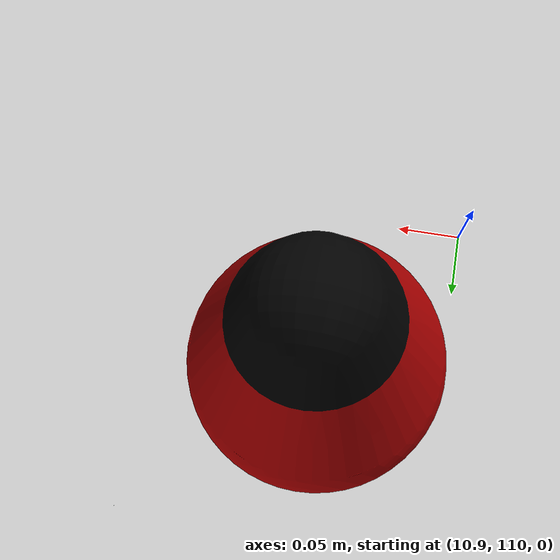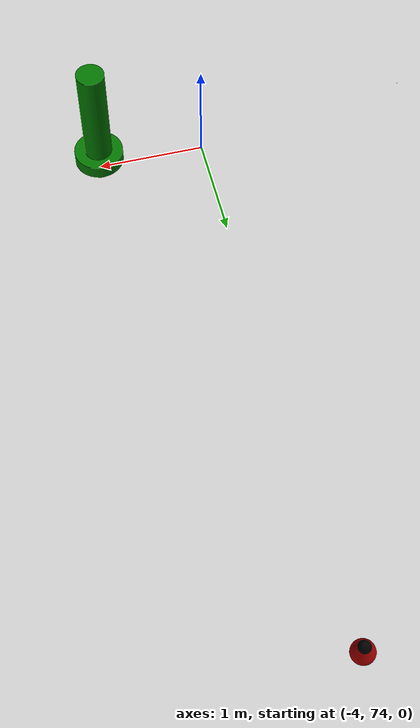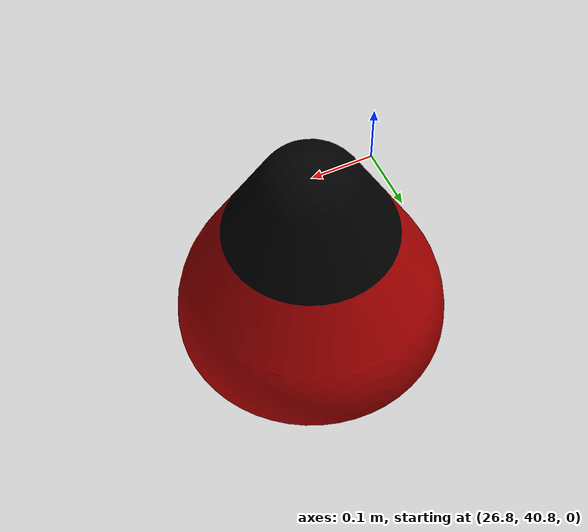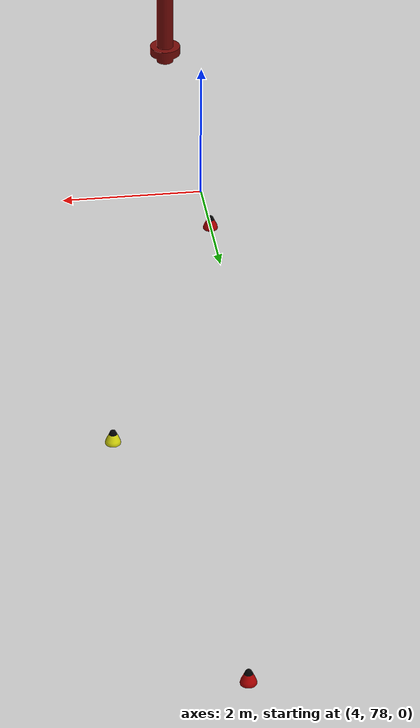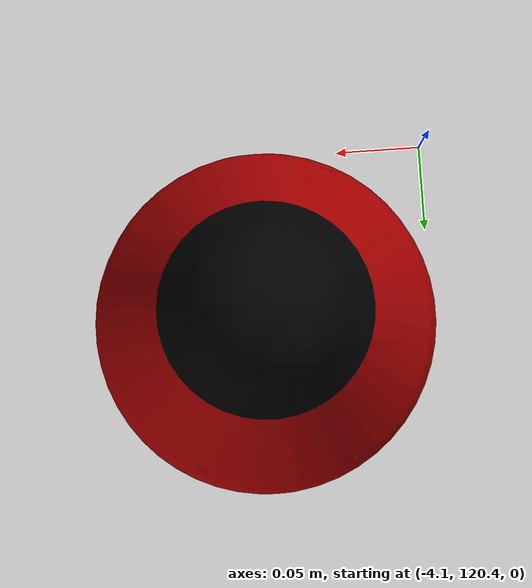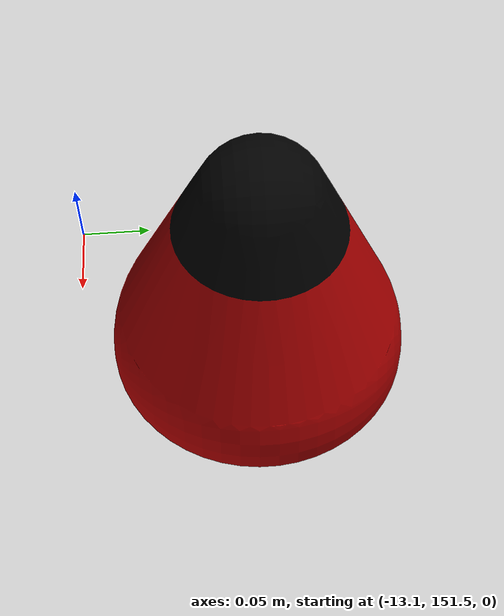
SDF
<sdf version='1.7'>
  <world name='default'>
    <light name='sun' type='directional'>
      <cast_shadows>1</cast_shadows>
      <pose>0 0 10 0 -0 0</pose>
      <diffuse>0.8 0.8 0.8 1</diffuse>
      <specular>0.2 0.2 0.2 1</specular>
      <attenuation>
        <range>1000</range>
        <constant>0.9</constant>
        <linear>0.01</linear>
        <quadratic>0.001</quadratic>
      </attenuation>
      <direction>-0.5 0.1 -0.9</direction>
      <spot>
        <inner_angle>0</inner_angle>
        <outer_angle>0</outer_angle>
        <falloff>0</falloff>
      </spot>
    </light>
    <model name='ground_plane'>
      <static>1</static>
      <link name='link'>
        <collision name='collision'>
          <geometry>
            <plane>
              <normal>0 0 1</normal>
              <size>100 100</size>
            </plane>
          </geometry>
          <surface>
            <contact>
              <collide_bitmask>65535</collide_bitmask>
              <ode/>
            </contact>
            <friction>
              <ode>
                <mu>100</mu>
                <mu2>50</mu2>
              </ode>
              <torsional>
                <ode/>
              </torsional>
            </friction>
            <bounce/>
          </surface>
          <max_contacts>10</max_contacts>
        </collision>
        <visual name='visual'>
          <cast_shadows>0</cast_shadows>
          <geometry>
            <plane>
              <normal>0 0 1</normal>
              <size>100 100</size>
            </plane>
          </geometry>
          <material>
            <script>
              <uri>file://media/materials/scripts/gazebo.material</uri>
              <name>Gazebo/Grey</name>
            </script>
          </material>
        </visual>
        <self_collide>0</self_collide>
        <enable_wind>0</enable_wind>
        <kinematic>0</kinematic>
      </link>
    </model>
    <gravity>0 0 -9.8</gravity>
    <magnetic_field>6e-06 2.3e-05 -4.2e-05</magnetic_field>
    <atmosphere type='adiabatic'/>
    <physics type='ode'>
      <max_step_size>0.001</max_step_size>
      <real_time_factor>1</real_time_factor>
      <real_time_update_rate>1000</real_time_update_rate>
    </physics>
    <scene>
      <ambient>0.4 0.4 0.4 1</ambient>
      <background>0.7 0.7 0.7 1</background>
    <shadows>1</shadows>
    </scene>
    <wind/>
    <spherical_coordinates>
      <surface_model>EARTH_WGS84</surface_model>
      <latitude_deg>0</latitude_deg>
      <longitude_deg>0</longitude_deg>
      <elevation>0</elevation>
      <heading_deg>0</heading_deg>
    </spherical_coordinates>
    <model name='NChannel_Green_1'>
      <link name='link'>
        <inertial>
          <pose>0 0 0 0 -0 0</pose>
          <mass>48.25765288</mass>
          <inertia>
            <ixx>19.0181270589003</ixx>
            <ixy>-0.1151698171335</ixy>
            <ixz>-4.3895955e-06</ixz>
            <iyy>0.877758148165</iyy>
            <iyz>-0.0006941413684</iyz>
            <izz>19.0188583655106</izz>
          </inertia>
        </inertial>
        <collision name='collision'>
          <pose>0.0 0.1016 0.0 0 0 0</pose>
          <geometry>
            <mesh>
              <uri>model://NChannel_Green/meshes/NChannel_Green.dae</uri>
            </mesh>
          </geometry>
          <surface>
            <friction>
              <ode>
                <mu>1</mu>
                <mu2>1</mu2>
              </ode>
              <torsional>
                <ode/>
              </torsional>
            </friction>
            <contact>
              <ode>
                <kp>1e+07</kp>
                <kd>1</kd>
                <min_depth>0.001</min_depth>
                <max_vel>0.1</max_vel>
              </ode>
            </contact>
            <bounce/>
          </surface>
          <max_contacts>10</max_contacts>
        </collision>
        <visual name='visual'>
          <pose>0.0 0.1016 0.0 0 0 0</pose>
          <geometry>
            <mesh>
              <uri>model://NChannel_Green/meshes/NChannel_Green.dae</uri>
              <scale>0.0254 0.0254 0.0254</scale>            </mesh>
          </geometry>
        </visual>
        <self_collide>0</self_collide>
        <enable_wind>0</enable_wind>
        <kinematic>0</kinematic>
      </link>
      <pose>-3 0 0 0 0 0</pose>
    </model>
    <model name='NChannel_Green_2'>
      <link name='link'>
        <inertial>
          <pose>0 0 0 0 -0 0</pose>
          <mass>21.88928528514496</mass>
          <inertia>
            <ixx>0.005565458997078466</ixx>
            <ixy>-3.37032607350023e-05</ixy>
            <ixz>-1.2845699102413499e-09</ixz>
            <iyy>0.00025686688115156113</iyy>
            <iyz>-2.0313332180616546e-07</iyz>
            <izz>0.005565673006425512</izz>
          </inertia>
        </inertial>
        <collision name='collision'>
          <pose>0.0 0.00258064 0.0 0 0 0</pose>
          <geometry>
            <mesh>
              <uri>model://NChannel_Green/meshes/NChannel_Green.dae</uri>
            </mesh>
          </geometry>
          <surface>
            <friction>
              <ode>
                <mu>1</mu>
                <mu2>1</mu2>
              </ode>
              <torsional>
                <ode/>
              </torsional>
            </friction>
            <contact>
              <ode>
                <kp>1e+07</kp>
                <kd>1</kd>
                <min_depth>0.001</min_depth>
                <max_vel>0.1</max_vel>
              </ode>
            </contact>
            <bounce/>
          </surface>
          <max_contacts>10</max_contacts>
        </collision>
        <visual name='visual'>
          <pose>0.0 0.00258064 0.0 0 0 0</pose>
          <geometry>
            <mesh>
              <uri>model://NChannel_Green/meshes/NChannel_Green.dae</uri>
              <scale>0.0254 0.0254 0.0254</scale>            </mesh>
          </geometry>
        </visual>
        <self_collide>0</self_collide>
        <enable_wind>0</enable_wind>
        <kinematic>0</kinematic>
      </link>
      <pose>-3 74 0 0 0 0</pose>
    </model>
    <model name='NChannel_Red_1'>
      <link name='link'>
        <inertial>
          <pose>0 0 0 0 -0 0</pose>
          <mass>9.928804691059472</mass>
          <inertia>
            <ixx>1.6286742512673433e-06</ixx>
            <ixy>-9.862912110512852e-09</ixy>
            <ixz>-3.7591615316205554e-13</ixz>
            <iyy>7.51694470401285e-08</iyy>
            <iyz>-5.944487435335972e-11</iyz>
            <izz>1.62873687889846e-06</izz>
          </inertia>
        </inertial>
        <collision name='collision'>
          <pose>0.0 6.5548256e-05 0.0 0 0 0</pose>
          <geometry>
            <mesh>
              <uri>model://NChannel_Red/meshes/NChannel_Red.dae</uri>
            </mesh>
          </geometry>
          <surface>
            <friction>
              <ode>
                <mu>1</mu>
                <mu2>1</mu2>
              </ode>
              <torsional>
                <ode/>
              </torsional>
            </friction>
            <contact>
              <ode>
                <kp>1e+07</kp>
                <kd>1</kd>
                <min_depth>0.001</min_depth>
                <max_vel>0.1</max_vel>
              </ode>
            </contact>
            <bounce/>
          </surface>
          <max_contacts>10</max_contacts>
        </collision>
        <visual name='visual'>
          <pose>0.0 6.5548256e-05 0.0 0 0 0</pose>
          <geometry>
            <mesh>
              <uri>model://NChannel_Red/meshes/NChannel_Red.dae</uri>
              <scale>0.0254 0.0254 0.0254</scale>            </mesh>
          </geometry>
        </visual>
        <self_collide>0</self_collide>
        <enable_wind>0</enable_wind>
        <kinematic>0</kinematic>
      </link>
      <pose>4 0 0 0 0 0</pose>
    </model>
    <model name='NChannel_Red_2'>
      <link name='link'>
        <inertial>
          <pose>0 0 0 0 -0 0</pose>
          <mass>4.503626377427048</mass>
          <inertia>
            <ixx>4.766147442886e-10</ixx>
            <ixy>-2.8862796411468478e-12</ixy>
            <ixz>-1.1000799028649798e-16</ixz>
            <iyy>2.1997564430989092e-11</iyy>
            <iyz>-1.7395930197304883e-14</iyz>
            <izz>4.766330716197816e-10</izz>
          </inertia>
        </inertial>
        <collision name='collision'>
          <pose>0.0 1.6649257023999999e-06 0.0 0 0 0</pose>
          <geometry>
            <mesh>
              <uri>model://NChannel_Red/meshes/NChannel_Red.dae</uri>
            </mesh>
          </geometry>
          <surface>
            <friction>
              <ode>
                <mu>1</mu>
                <mu2>1</mu2>
              </ode>
              <torsional>
                <ode/>
              </torsional>
            </friction>
            <contact>
              <ode>
                <kp>1e+07</kp>
                <kd>1</kd>
                <min_depth>0.001</min_depth>
                <max_vel>0.1</max_vel>
              </ode>
            </contact>
            <bounce/>
          </surface>
          <max_contacts>10</max_contacts>
        </collision>
        <visual name='visual'>
          <pose>0.0 1.6649257023999999e-06 0.0 0 0 0</pose>
          <geometry>
            <mesh>
              <uri>model://NChannel_Red/meshes/NChannel_Red.dae</uri>
              <scale>0.0254 0.0254 0.0254</scale>            </mesh>
          </geometry>
        </visual>
        <self_collide>0</self_collide>
        <enable_wind>0</enable_wind>
        <kinematic>0</kinematic>
      </link>
      <pose>4 74 0 0 0 0</pose>
    </model>
    <model name='A-0-Green_1'>
      <link name='link'>
        <inertial>
          <pose>0 0 0 0 -0 0</pose>
          <mass>1.892839416</mass>
          <inertia>
            <ixx>0.011653498133400001</ixx>
            <ixy>0.0</ixy>
            <ixz>0.0</ixz>
            <iyy>0.0072006924582</iyy>
            <iyz>0.0</iyz>
            <izz>0.011653498133400001</izz>
          </inertia>
        </inertial>
        <collision name='collision'>
          <pose>0.0 0.1016 0.0 0 0 0</pose>
          <geometry>
            <mesh>
              <uri>model://A-0-Green/meshes/A-0-Green.dae</uri>
            </mesh>
          </geometry>
          <surface>
            <friction>
              <ode>
                <mu>1</mu>
                <mu2>1</mu2>
              </ode>
              <torsional>
                <ode/>
              </torsional>
            </friction>
            <contact>
              <ode>
                <kp>1e+07</kp>
                <kd>1</kd>
                <min_depth>0.001</min_depth>
                <max_vel>0.1</max_vel>
              </ode>
            </contact>
            <bounce/>
          </surface>
          <max_contacts>10</max_contacts>
        </collision>
        <visual name='visual'>
          <pose>0.0 0.1016 0.0 0 0 0</pose>
          <geometry>
            <mesh>
              <uri>model://A-0-Green/meshes/A-0-Green.dae</uri>
              <scale>0.0254 0.0254 0.0254</scale>            </mesh>
          </geometry>
        </visual>
        <self_collide>0</self_collide>
        <enable_wind>0</enable_wind>
        <kinematic>0</kinematic>
      </link>
      <pose>-4 79 0 0 0 0</pose>
    </model>
    <model name='A-0-Red_1'>
      <link name='link'>
        <inertial>
          <pose>0 0 0 0 -0 0</pose>
          <mass>0.858576816382272</mass>
          <inertia>
            <ixx>3.4102761977087363e-06</ixx>
            <ixy>0.0</ixy>
            <ixz>0.0</ixz>
            <iyy>2.1072084807599107e-06</iyy>
            <iyz>0.0</iyz>
            <izz>3.4102761977087363e-06</izz>
          </inertia>
        </inertial>
        <collision name='collision'>
          <pose>0.0 0.00258064 0.0 0 0 0</pose>
          <geometry>
            <mesh>
              <uri>model://A-0-Red/meshes/A-0-Red.dae</uri>
            </mesh>
          </geometry>
          <surface>
            <friction>
              <ode>
                <mu>1</mu>
                <mu2>1</mu2>
              </ode>
              <torsional>
                <ode/>
              </torsional>
            </friction>
            <contact>
              <ode>
                <kp>1e+07</kp>
                <kd>1</kd>
                <min_depth>0.001</min_depth>
                <max_vel>0.1</max_vel>
              </ode>
            </contact>
            <bounce/>
          </surface>
          <max_contacts>10</max_contacts>
        </collision>
        <visual name='visual'>
          <pose>0.0 0.00258064 0.0 0 0 0</pose>
          <geometry>
            <mesh>
              <uri>model://A-0-Red/meshes/A-0-Red.dae</uri>
              <scale>0.0254 0.0254 0.0254</scale>            </mesh>
          </geometry>
        </visual>
        <self_collide>0</self_collide>
        <enable_wind>0</enable_wind>
        <kinematic>0</kinematic>
      </link>
      <pose>4 79 0 0 0 0</pose>
    </model>
    <model name='A-0-Green_2'>
      <link name='link'>
        <inertial>
          <pose>0 0 0 0 -0 0</pose>
          <mass>0.3894435752964675</mass>
          <inertia>
            <ixx>9.979822034146253e-10</ixx>
            <ixy>0.0</ixy>
            <ixz>0.0</ixz>
            <iyy>6.16652857647036e-10</iyy>
            <iyz>0.0</iyz>
            <izz>9.979822034146253e-10</izz>
          </inertia>
        </inertial>
        <collision name='collision'>
          <pose>0.0 6.5548256e-05 0.0 0 0 0</pose>
          <geometry>
            <mesh>
              <uri>model://A-0-Green/meshes/A-0-Green.dae</uri>
            </mesh>
          </geometry>
          <surface>
            <friction>
              <ode>
                <mu>1</mu>
                <mu2>1</mu2>
              </ode>
              <torsional>
                <ode/>
              </torsional>
            </friction>
            <contact>
              <ode>
                <kp>1e+07</kp>
                <kd>1</kd>
                <min_depth>0.001</min_depth>
                <max_vel>0.1</max_vel>
              </ode>
            </contact>
            <bounce/>
          </surface>
          <max_contacts>10</max_contacts>
        </collision>
        <visual name='visual'>
          <pose>0.0 6.5548256e-05 0.0 0 0 0</pose>
          <geometry>
            <mesh>
              <uri>model://A-0-Green/meshes/A-0-Green.dae</uri>
              <scale>0.0254 0.0254 0.0254</scale>            </mesh>
          </geometry>
        </visual>
        <self_collide>0</self_collide>
        <enable_wind>0</enable_wind>
        <kinematic>0</kinematic>
      </link>
      <pose>5 89.375 0 0 0 0</pose>
    </model>
    <model name='A-0-Red_2'>
      <link name='link'>
        <inertial>
          <pose>0 0 0 0 -0 0</pose>
          <mass>0.17664849020587528</mass>
          <inertia>
            <ixx>2.920492126125949e-13</ixx>
            <ixy>0.0</ixy>
            <ixz>0.0</ixz>
            <iyy>1.8045710726597133e-13</iyy>
            <iyz>0.0</iyz>
            <izz>2.920492126125949e-13</izz>
          </inertia>
        </inertial>
        <collision name='collision'>
          <pose>0.0 1.6649257023999999e-06 0.0 0 0 0</pose>
          <geometry>
            <mesh>
              <uri>model://A-0-Red/meshes/A-0-Red.dae</uri>
            </mesh>
          </geometry>
          <surface>
            <friction>
              <ode>
                <mu>1</mu>
                <mu2>1</mu2>
              </ode>
              <torsional>
                <ode/>
              </torsional>
            </friction>
            <contact>
              <ode>
                <kp>1e+07</kp>
                <kd>1</kd>
                <min_depth>0.001</min_depth>
                <max_vel>0.1</max_vel>
              </ode>
            </contact>
            <bounce/>
          </surface>
          <max_contacts>10</max_contacts>
        </collision>
        <visual name='visual'>
          <pose>0.0 1.6649257023999999e-06 0.0 0 0 0</pose>
          <geometry>
            <mesh>
              <uri>model://A-0-Red/meshes/A-0-Red.dae</uri>
              <scale>0.0254 0.0254 0.0254</scale>            </mesh>
          </geometry>
        </visual>
        <self_collide>0</self_collide>
        <enable_wind>0</enable_wind>
        <kinematic>0</kinematic>
      </link>
      <pose>13 89.375 0 0 0 0</pose>
    </model>
    <model name='A-0-Green_3'>
      <link name='link'>
        <inertial>
          <pose>0 0 0 0 -0 0</pose>
          <mass>0.08012634196946337</mass>
          <inertia>
            <ixx>8.546519396418599e-17</ixx>
            <ixy>0.0</ixy>
            <ixz>0.0</ixz>
            <iyy>5.280891373318167e-17</iyy>
            <iyz>0.0</iyz>
            <izz>8.546519396418599e-17</izz>
          </inertia>
        </inertial>
        <collision name='collision'>
          <pose>0.0 4.228911284096e-08 0.0 0 0 0</pose>
          <geometry>
            <mesh>
              <uri>model://A-0-Green/meshes/A-0-Green.dae</uri>
            </mesh>
          </geometry>
          <surface>
            <friction>
              <ode>
                <mu>1</mu>
                <mu2>1</mu2>
              </ode>
              <torsional>
                <ode/>
              </torsional>
            </friction>
            <contact>
              <ode>
                <kp>1e+07</kp>
                <kd>1</kd>
                <min_depth>0.001</min_depth>
                <max_vel>0.1</max_vel>
              </ode>
            </contact>
            <bounce/>
          </surface>
          <max_contacts>10</max_contacts>
        </collision>
        <visual name='visual'>
          <pose>0.0 4.228911284096e-08 0.0 0 0 0</pose>
          <geometry>
            <mesh>
              <uri>model://A-0-Green/meshes/A-0-Green.dae</uri>
              <scale>0.0254 0.0254 0.0254</scale>            </mesh>
          </geometry>
        </visual>
        <self_collide>0</self_collide>
        <enable_wind>0</enable_wind>
        <kinematic>0</kinematic>
      </link>
      <pose>7 99.75 0 0 0 0</pose>
    </model>
    <model name='A-0-Red_3'>
      <link name='link'>
        <inertial>
          <pose>0 0 0 0 -0 0</pose>
          <mass>0.03634466770661283</mass>
          <inertia>
            <ixx>2.50105087221212e-20</ixx>
            <ixy>0.0</ixy>
            <ixz>0.0</ixz>
            <iyy>1.5453984672204165e-20</iyy>
            <iyz>0.0</iyz>
            <izz>2.50105087221212e-20</izz>
          </inertia>
        </inertial>
        <collision name='collision'>
          <pose>0.0 1.0741434661603839e-09 0.0 0 0 0</pose>
          <geometry>
            <mesh>
              <uri>model://A-0-Red/meshes/A-0-Red.dae</uri>
            </mesh>
          </geometry>
          <surface>
            <friction>
              <ode>
                <mu>1</mu>
                <mu2>1</mu2>
              </ode>
              <torsional>
                <ode/>
              </torsional>
            </friction>
            <contact>
              <ode>
                <kp>1e+07</kp>
                <kd>1</kd>
                <min_depth>0.001</min_depth>
                <max_vel>0.1</max_vel>
              </ode>
            </contact>
            <bounce/>
          </surface>
          <max_contacts>10</max_contacts>
        </collision>
        <visual name='visual'>
          <pose>0.0 1.0741434661603839e-09 0.0 0 0 0</pose>
          <geometry>
            <mesh>
              <uri>model://A-0-Red/meshes/A-0-Red.dae</uri>
              <scale>0.0254 0.0254 0.0254</scale>            </mesh>
          </geometry>
        </visual>
        <self_collide>0</self_collide>
        <enable_wind>0</enable_wind>
        <kinematic>0</kinematic>
      </link>
      <pose>15 99.75 0 0 0 0</pose>
    </model>
    <model name='A-0-Green_4'>
      <link name='link'>
        <inertial>
          <pose>0 0 0 0 -0 0</pose>
          <mass>0.016485650514377927</mass>
          <inertia>
            <ixx>7.31906776928893e-24</ixx>
            <ixy>0.0</ixy>
            <ixz>0.0</ixz>
            <iyy>4.522449438278425e-24</iyy>
            <iyz>0.0</iyz>
            <izz>7.31906776928893e-24</izz>
          </inertia>
        </inertial>
        <collision name='collision'>
          <pose>0.0 2.7283244040473747e-11 0.0 0 0 0</pose>
          <geometry>
            <mesh>
              <uri>model://A-0-Green/meshes/A-0-Green.dae</uri>
            </mesh>
          </geometry>
          <surface>
            <friction>
              <ode>
                <mu>1</mu>
                <mu2>1</mu2>
              </ode>
              <torsional>
                <ode/>
              </torsional>
            </friction>
            <contact>
              <ode>
                <kp>1e+07</kp>
                <kd>1</kd>
                <min_depth>0.001</min_depth>
                <max_vel>0.1</max_vel>
              </ode>
            </contact>
            <bounce/>
          </surface>
          <max_contacts>10</max_contacts>
        </collision>
        <visual name='visual'>
          <pose>0.0 2.7283244040473747e-11 0.0 0 0 0</pose>
          <geometry>
            <mesh>
              <uri>model://A-0-Green/meshes/A-0-Green.dae</uri>
              <scale>0.0254 0.0254 0.0254</scale>            </mesh>
          </geometry>
        </visual>
        <self_collide>0</self_collide>
        <enable_wind>0</enable_wind>
        <kinematic>0</kinematic>
      </link>
      <pose>3 110.125 0 0 0 0</pose>
    </model>
    <model name='A-0-Red_4'>
      <link name='link'>
        <inertial>
          <pose>0 0 0 0 -0 0</pose>
          <mass>0.007477759188117712</mass>
          <inertia>
            <ixx>2.1418497962843818e-27</ixx>
            <ixy>0.0</ixy>
            <ixz>0.0</ixz>
            <iyy>1.3234482468829668e-27</iyy>
            <iyz>0.0</iyz>
            <izz>2.1418497962843818e-27</izz>
          </inertia>
        </inertial>
        <collision name='collision'>
          <pose>0.0 6.929943986280332e-13 0.0 0 0 0</pose>
          <geometry>
            <mesh>
              <uri>model://A-0-Red/meshes/A-0-Red.dae</uri>
            </mesh>
          </geometry>
          <surface>
            <friction>
              <ode>
                <mu>1</mu>
                <mu2>1</mu2>
              </ode>
              <torsional>
                <ode/>
              </torsional>
            </friction>
            <contact>
              <ode>
                <kp>1e+07</kp>
                <kd>1</kd>
                <min_depth>0.001</min_depth>
                <max_vel>0.1</max_vel>
              </ode>
            </contact>
            <bounce/>
          </surface>
          <max_contacts>10</max_contacts>
        </collision>
        <visual name='visual'>
          <pose>0.0 6.929943986280332e-13 0.0 0 0 0</pose>
          <geometry>
            <mesh>
              <uri>model://A-0-Red/meshes/A-0-Red.dae</uri>
              <scale>0.0254 0.0254 0.0254</scale>            </mesh>
          </geometry>
        </visual>
        <self_collide>0</self_collide>
        <enable_wind>0</enable_wind>
        <kinematic>0</kinematic>
      </link>
      <pose>11 110.125 0 0 0 0</pose>
    </model>
    <model name='A-0-Green_5'>
      <link name='link'>
        <inertial>
          <pose>0 0 0 0 -0 0</pose>
          <mass>0.003391851745656689</mass>
          <inertia>
            <ixx>6.267902818297226e-31</ixx>
            <ixy>0.0</ixy>
            <ixz>0.0</ixz>
            <iyy>3.8729349793335733e-31</iyy>
            <iyz>0.0</iyz>
            <izz>6.267902818297226e-31</izz>
          </inertia>
        </inertial>
        <collision name='collision'>
          <pose>0.0 1.7602057725152042e-14 0.0 0 0 0</pose>
          <geometry>
            <mesh>
              <uri>model://A-0-Green/meshes/A-0-Green.dae</uri>
            </mesh>
          </geometry>
          <surface>
            <friction>
              <ode>
                <mu>1</mu>
                <mu2>1</mu2>
              </ode>
              <torsional>
                <ode/>
              </torsional>
            </friction>
            <contact>
              <ode>
                <kp>1e+07</kp>
                <kd>1</kd>
                <min_depth>0.001</min_depth>
                <max_vel>0.1</max_vel>
              </ode>
            </contact>
            <bounce/>
          </surface>
          <max_contacts>10</max_contacts>
        </collision>
        <visual name='visual'>
          <pose>0.0 1.7602057725152042e-14 0.0 0 0 0</pose>
          <geometry>
            <mesh>
              <uri>model://A-0-Green/meshes/A-0-Green.dae</uri>
              <scale>0.0254 0.0254 0.0254</scale>            </mesh>
          </geometry>
        </visual>
        <self_collide>0</self_collide>
        <enable_wind>0</enable_wind>
        <kinematic>0</kinematic>
      </link>
      <pose>-4 120.5 0 0 0 0</pose>
    </model>
    <model name='A-0-Red_5'>
      <link name='link'>
        <inertial>
          <pose>0 0 0 0 -0 0</pose>
          <mass>0.001538516817015909</mass>
          <inertia>
            <ixx>1.8342372003756546e-34</ixx>
            <ixy>0.0</ixy>
            <ixz>0.0</ixz>
            <iyy>1.133374530471683e-34</iyy>
            <iyz>0.0</iyz>
            <izz>1.8342372003756546e-34</izz>
          </inertia>
        </inertial>
        <collision name='collision'>
          <pose>0.0 4.470922662188618e-16 0.0 0 0 0</pose>
          <geometry>
            <mesh>
              <uri>model://A-0-Red/meshes/A-0-Red.dae</uri>
            </mesh>
          </geometry>
          <surface>
            <friction>
              <ode>
                <mu>1</mu>
                <mu2>1</mu2>
              </ode>
              <torsional>
                <ode/>
              </torsional>
            </friction>
            <contact>
              <ode>
                <kp>1e+07</kp>
                <kd>1</kd>
                <min_depth>0.001</min_depth>
                <max_vel>0.1</max_vel>
              </ode>
            </contact>
            <bounce/>
          </surface>
          <max_contacts>10</max_contacts>
        </collision>
        <visual name='visual'>
          <pose>0.0 4.470922662188618e-16 0.0 0 0 0</pose>
          <geometry>
            <mesh>
              <uri>model://A-0-Red/meshes/A-0-Red.dae</uri>
              <scale>0.0254 0.0254 0.0254</scale>            </mesh>
          </geometry>
        </visual>
        <self_collide>0</self_collide>
        <enable_wind>0</enable_wind>
        <kinematic>0</kinematic>
      </link>
      <pose>4 120.5 0 0 0 0</pose>
    </model>
    <model name='A-0-Green_6'>
      <link name='link'>
        <inertial>
          <pose>0 0 0 0 -0 0</pose>
          <mass>0.0006978589200638801</mass>
          <inertia>
            <ixx>5.367706240467715e-38</ixx>
            <ixy>0.0</ixy>
            <ixz>0.0</ixz>
            <iyy>3.316703825848742e-38</iyy>
            <iyz>0.0</iyz>
            <izz>5.367706240467715e-38</izz>
          </inertia>
        </inertial>
        <collision name='collision'>
          <pose>0.0 1.135614356195909e-17 0.0 0 0 0</pose>
          <geometry>
            <mesh>
              <uri>model://A-0-Green/meshes/A-0-Green.dae</uri>
            </mesh>
          </geometry>
          <surface>
            <friction>
              <ode>
                <mu>1</mu>
                <mu2>1</mu2>
              </ode>
              <torsional>
                <ode/>
              </torsional>
            </friction>
            <contact>
              <ode>
                <kp>1e+07</kp>
                <kd>1</kd>
                <min_depth>0.001</min_depth>
                <max_vel>0.1</max_vel>
              </ode>
            </contact>
            <bounce/>
          </surface>
          <max_contacts>10</max_contacts>
        </collision>
        <visual name='visual'>
          <pose>0.0 1.135614356195909e-17 0.0 0 0 0</pose>
          <geometry>
            <mesh>
              <uri>model://A-0-Green/meshes/A-0-Green.dae</uri>
              <scale>0.0254 0.0254 0.0254</scale>            </mesh>
          </geometry>
        </visual>
        <self_collide>0</self_collide>
        <enable_wind>0</enable_wind>
        <kinematic>0</kinematic>
      </link>
      <pose>-11 130.875 0 0 0 0</pose>
    </model>
    <model name='A-0-Red_6'>
      <link name='link'>
        <inertial>
          <pose>0 0 0 0 -0 0</pose>
          <mass>0.0003165432232696155</mass>
          <inertia>
            <ixx>1.5708039438986e-41</ixx>
            <ixy>0.0</ixy>
            <ixz>0.0</ixz>
            <iyy>9.70599212585228e-42</iyy>
            <iyz>0.0</iyz>
            <izz>1.5708039438986e-41</izz>
          </inertia>
        </inertial>
        <collision name='collision'>
          <pose>0.0 2.884460464737609e-19 0.0 0 0 0</pose>
          <geometry>
            <mesh>
              <uri>model://A-0-Red/meshes/A-0-Red.dae</uri>
            </mesh>
          </geometry>
          <surface>
            <friction>
              <ode>
                <mu>1</mu>
                <mu2>1</mu2>
              </ode>
              <torsional>
                <ode/>
              </torsional>
            </friction>
            <contact>
              <ode>
                <kp>1e+07</kp>
                <kd>1</kd>
                <min_depth>0.001</min_depth>
                <max_vel>0.1</max_vel>
              </ode>
            </contact>
            <bounce/>
          </surface>
          <max_contacts>10</max_contacts>
        </collision>
        <visual name='visual'>
          <pose>0.0 2.884460464737609e-19 0.0 0 0 0</pose>
          <geometry>
            <mesh>
              <uri>model://A-0-Red/meshes/A-0-Red.dae</uri>
              <scale>0.0254 0.0254 0.0254</scale>            </mesh>
          </geometry>
        </visual>
        <self_collide>0</self_collide>
        <enable_wind>0</enable_wind>
        <kinematic>0</kinematic>
      </link>
      <pose>-3 130.875 0 0 0 0</pose>
    </model>
    <model name='A-0-Green_7'>
      <link name='link'>
        <inertial>
          <pose>0 0 0 0 -0 0</pose>
          <mass>0.00014358147372931144</mass>
          <inertia>
            <ixx>4.596795949013031e-45</ixx>
            <ixy>0.0</ixy>
            <ixz>0.0</ixz>
            <iyy>2.8403586239117734e-45</iyy>
            <iyz>0.0</iyz>
            <izz>4.596795949013031e-45</izz>
          </inertia>
        </inertial>
        <collision name='collision'>
          <pose>0.0 7.326529580433526e-21 0.0 0 0 0</pose>
          <geometry>
            <mesh>
              <uri>model://A-0-Green/meshes/A-0-Green.dae</uri>
            </mesh>
          </geometry>
          <surface>
            <friction>
              <ode>
                <mu>1</mu>
                <mu2>1</mu2>
              </ode>
              <torsional>
                <ode/>
              </torsional>
            </friction>
            <contact>
              <ode>
                <kp>1e+07</kp>
                <kd>1</kd>
                <min_depth>0.001</min_depth>
                <max_vel>0.1</max_vel>
              </ode>
            </contact>
            <bounce/>
          </surface>
          <max_contacts>10</max_contacts>
        </collision>
        <visual name='visual'>
          <pose>0.0 7.326529580433526e-21 0.0 0 0 0</pose>
          <geometry>
            <mesh>
              <uri>model://A-0-Green/meshes/A-0-Green.dae</uri>
              <scale>0.0254 0.0254 0.0254</scale>            </mesh>
          </geometry>
        </visual>
        <self_collide>0</self_collide>
        <enable_wind>0</enable_wind>
        <kinematic>0</kinematic>
      </link>
      <pose>-15 141.25 0 0 0 0</pose>
    </model>
    <model name='A-0-Red_7'>
      <link name='link'>
        <inertial>
          <pose>0 0 0 0 -0 0</pose>
          <mass>6.512740783182583e-05</mass>
          <inertia>
            <ixx>1.3452049874803887e-48</ixx>
            <ixy>0.0</ixy>
            <ixz>0.0</ixz>
            <iyy>8.312016955939542e-49</iyy>
            <iyz>0.0</iyz>
            <izz>1.3452049874803887e-48</izz>
          </inertia>
        </inertial>
        <collision name='collision'>
          <pose>0.0 1.8609385134301155e-22 0.0 0 0 0</pose>
          <geometry>
            <mesh>
              <uri>model://A-0-Red/meshes/A-0-Red.dae</uri>
            </mesh>
          </geometry>
          <surface>
            <friction>
              <ode>
                <mu>1</mu>
                <mu2>1</mu2>
              </ode>
              <torsional>
                <ode/>
              </torsional>
            </friction>
            <contact>
              <ode>
                <kp>1e+07</kp>
                <kd>1</kd>
                <min_depth>0.001</min_depth>
                <max_vel>0.1</max_vel>
              </ode>
            </contact>
            <bounce/>
          </surface>
          <max_contacts>10</max_contacts>
        </collision>
        <visual name='visual'>
          <pose>0.0 1.8609385134301155e-22 0.0 0 0 0</pose>
          <geometry>
            <mesh>
              <uri>model://A-0-Red/meshes/A-0-Red.dae</uri>
              <scale>0.0254 0.0254 0.0254</scale>            </mesh>
          </geometry>
        </visual>
        <self_collide>0</self_collide>
        <enable_wind>0</enable_wind>
        <kinematic>0</kinematic>
      </link>
      <pose>-7 141.25 0 0 0 0</pose>
    </model>
    <model name='A-0-Green_8'>
      <link name='link'>
        <inertial>
          <pose>0 0 0 0 -0 0</pose>
          <mass>2.9541271173253544e-05</mass>
          <inertia>
            <ixx>3.936603839747647e-52</ixx>
            <ixy>0.0</ixy>
            <ixz>0.0</ixz>
            <iyy>2.432426148381061e-52</iyy>
            <iyz>0.0</iyz>
            <izz>3.936603839747647e-52</izz>
          </inertia>
        </inertial>
        <collision name='collision'>
          <pose>0.0 4.726783824112493e-24 0.0 0 0 0</pose>
          <geometry>
            <mesh>
              <uri>model://A-0-Green/meshes/A-0-Green.dae</uri>
            </mesh>
          </geometry>
          <surface>
            <friction>
              <ode>
                <mu>1</mu>
                <mu2>1</mu2>
              </ode>
              <torsional>
                <ode/>
              </torsional>
            </friction>
            <contact>
              <ode>
                <kp>1e+07</kp>
                <kd>1</kd>
                <min_depth>0.001</min_depth>
                <max_vel>0.1</max_vel>
              </ode>
            </contact>
            <bounce/>
          </surface>
          <max_contacts>10</max_contacts>
        </collision>
        <visual name='visual'>
          <pose>0.0 4.726783824112493e-24 0.0 0 0 0</pose>
          <geometry>
            <mesh>
              <uri>model://A-0-Green/meshes/A-0-Green.dae</uri>
              <scale>0.0254 0.0254 0.0254</scale>            </mesh>
          </geometry>
        </visual>
        <self_collide>0</self_collide>
        <enable_wind>0</enable_wind>
        <kinematic>0</kinematic>
      </link>
      <pose>-13 151.625 0 0 0 0</pose>
    </model>
    <model name='A-0-Red_8'>
      <link name='link'>
        <inertial>
          <pose>0 0 0 0 -0 0</pose>
          <mass>1.339968427401842e-05</mass>
          <inertia>
            <ixx>1.1520065666825993e-55</ixx>
            <ixy>0.0</ixy>
            <ixz>0.0</ixz>
            <iyy>7.118244583343891e-56</iyy>
            <iyz>0.0</iyz>
            <izz>1.1520065666825993e-55</izz>
          </inertia>
        </inertial>
        <collision name='collision'>
          <pose>0.0 1.2006030913245732e-25 0.0 0 0 0</pose>
          <geometry>
            <mesh>
              <uri>model://A-0-Red/meshes/A-0-Red.dae</uri>
            </mesh>
          </geometry>
          <surface>
            <friction>
              <ode>
                <mu>1</mu>
                <mu2>1</mu2>
              </ode>
              <torsional>
                <ode/>
              </torsional>
            </friction>
            <contact>
              <ode>
                <kp>1e+07</kp>
                <kd>1</kd>
                <min_depth>0.001</min_depth>
                <max_vel>0.1</max_vel>
              </ode>
            </contact>
            <bounce/>
          </surface>
          <max_contacts>10</max_contacts>
        </collision>
        <visual name='visual'>
          <pose>0.0 1.2006030913245732e-25 0.0 0 0 0</pose>
          <geometry>
            <mesh>
              <uri>model://A-0-Red/meshes/A-0-Red.dae</uri>
              <scale>0.0254 0.0254 0.0254</scale>            </mesh>
          </geometry>
        </visual>
        <self_collide>0</self_collide>
        <enable_wind>0</enable_wind>
        <kinematic>0</kinematic>
      </link>
      <pose>-5 151.625 0 0 0 0</pose>
    </model>
    <model name='A-0-Green_9'>
      <link name='link'>
        <inertial>
          <pose>0 0 0 0 -0 0</pose>
          <mass>6.0779895892205635e-06</mass>
          <inertia>
            <ixx>3.3712285607202586e-59</ixx>
            <ixy>0.0</ixy>
            <ixz>0.0</ixz>
            <iyy>2.083080959396381e-59</iyy>
            <iyz>0.0</iyz>
            <izz>3.3712285607202586e-59</izz>
          </inertia>
        </inertial>
        <collision name='collision'>
          <pose>0.0 3.049531851964416e-27 0.0 0 0 0</pose>
          <geometry>
            <mesh>
              <uri>model://A-0-Green/meshes/A-0-Green.dae</uri>
            </mesh>
          </geometry>
          <surface>
            <friction>
              <ode>
                <mu>1</mu>
                <mu2>1</mu2>
              </ode>
              <torsional>
                <ode/>
              </torsional>
            </friction>
            <contact>
              <ode>
                <kp>1e+07</kp>
                <kd>1</kd>
                <min_depth>0.001</min_depth>
                <max_vel>0.1</max_vel>
              </ode>
            </contact>
            <bounce/>
          </surface>
          <max_contacts>10</max_contacts>
        </collision>
        <visual name='visual'>
          <pose>0.0 3.049531851964416e-27 0.0 0 0 0</pose>
          <geometry>
            <mesh>
              <uri>model://A-0-Green/meshes/A-0-Green.dae</uri>
              <scale>0.0254 0.0254 0.0254</scale>            </mesh>
          </geometry>
        </visual>
        <self_collide>0</self_collide>
        <enable_wind>0</enable_wind>
        <kinematic>0</kinematic>
      </link>
      <pose>-4 162 0 0 0 0</pose>
    </model>
    <model name='A-0-Red_9'>
      <link name='link'>
        <inertial>
          <pose>0 0 0 0 -0 0</pose>
          <mass>2.7569274537537337e-06</mass>
          <inertia>
            <ixx>9.865553146406083e-63</ixx>
            <ixy>0.0</ixy>
            <ixz>0.0</ixz>
            <iyy>6.095921870334691e-63</iyy>
            <iyz>0.0</iyz>
            <izz>9.865553146406083e-63</izz>
          </inertia>
        </inertial>
        <collision name='collision'>
          <pose>0.0 7.745810903989616e-29 0.0 0 0 0</pose>
          <geometry>
            <mesh>
              <uri>model://A-0-Red/meshes/A-0-Red.dae</uri>
            </mesh>
          </geometry>
          <surface>
            <friction>
              <ode>
                <mu>1</mu>
                <mu2>1</mu2>
              </ode>
              <torsional>
                <ode/>
              </torsional>
            </friction>
            <contact>
              <ode>
                <kp>1e+07</kp>
                <kd>1</kd>
                <min_depth>0.001</min_depth>
                <max_vel>0.1</max_vel>
              </ode>
            </contact>
            <bounce/>
          </surface>
          <max_contacts>10</max_contacts>
        </collision>
        <visual name='visual'>
          <pose>0.0 7.745810903989616e-29 0.0 0 0 0</pose>
          <geometry>
            <mesh>
              <uri>model://A-0-Red/meshes/A-0-Red.dae</uri>
              <scale>0.0254 0.0254 0.0254</scale>            </mesh>
          </geometry>
        </visual>
        <self_collide>0</self_collide>
        <enable_wind>0</enable_wind>
        <kinematic>0</kinematic>
      </link>
      <pose>4 162 0 0 0 0</pose>
    </model>
    <model name='A-0-Yellow_1'>
      <link name='link'>
        <inertial>
          <pose>0 0 0 0 -0 0</pose>
          <mass>1.2505202376030635e-06</mass>
          <inertia>
            <ixx>2.887052513098332e-66</ixx>
            <ixy>0.0</ixy>
            <ixz>0.0</ixz>
            <iyy>1.783908747358183e-66</iyy>
            <iyz>0.0</iyz>
            <izz>2.887052513098332e-66</izz>
          </inertia>
        </inertial>
        <collision name='collision'>
          <pose>0.0 1.9674359696133624e-30 0.0 0 0 0</pose>
          <geometry>
            <mesh>
              <uri>model://A-0-Yellow/meshes/A-0-Yellow.dae</uri>
            </mesh>
          </geometry>
          <surface>
            <friction>
              <ode>
                <mu>1</mu>
                <mu2>1</mu2>
              </ode>
              <torsional>
                <ode/>
              </torsional>
            </friction>
            <contact>
              <ode>
                <kp>1e+07</kp>
                <kd>1</kd>
                <min_depth>0.001</min_depth>
                <max_vel>0.1</max_vel>
              </ode>
            </contact>
            <bounce/>
          </surface>
          <max_contacts>10</max_contacts>
        </collision>
        <visual name='visual'>
          <pose>0.0 1.9674359696133624e-30 0.0 0 0 0</pose>
          <geometry>
            <mesh>
              <uri>model://A-0-Yellow/meshes/A-0-Yellow.dae</uri>
              <scale>0.0254 0.0254 0.0254</scale>            </mesh>
          </geometry>
        </visual>
        <self_collide>0</self_collide>
        <enable_wind>0</enable_wind>
        <kinematic>0</kinematic>
      </link>
      <pose>6 84.1875 0 0 0 0</pose>
    </model>
    <model name='A-0-Yellow_2'>
      <link name='link'>
        <inertial>
          <pose>0 0 0 0 -0 0</pose>
          <mass>5.672259756148488e-07</mass>
          <inertia>
            <ixx>8.44866181317342e-70</ixx>
            <ixy>0.0</ixy>
            <ixz>0.0</ixz>
            <iyy>5.2204252065427445e-70</iyy>
            <iyz>0.0</iyz>
            <izz>8.44866181317342e-70</izz>
          </inertia>
        </inertial>
        <collision name='collision'>
          <pose>0.0 4.99728736281794e-32 0.0 0 0 0</pose>
          <geometry>
            <mesh>
              <uri>model://A-0-Yellow/meshes/A-0-Yellow.dae</uri>
            </mesh>
          </geometry>
          <surface>
            <friction>
              <ode>
                <mu>1</mu>
                <mu2>1</mu2>
              </ode>
              <torsional>
                <ode/>
              </torsional>
            </friction>
            <contact>
              <ode>
                <kp>1e+07</kp>
                <kd>1</kd>
                <min_depth>0.001</min_depth>
                <max_vel>0.1</max_vel>
              </ode>
            </contact>
            <bounce/>
          </surface>
          <max_contacts>10</max_contacts>
        </collision>
        <visual name='visual'>
          <pose>0.0 4.99728736281794e-32 0.0 0 0 0</pose>
          <geometry>
            <mesh>
              <uri>model://A-0-Yellow/meshes/A-0-Yellow.dae</uri>
              <scale>0.0254 0.0254 0.0254</scale>            </mesh>
          </geometry>
        </visual>
        <self_collide>0</self_collide>
        <enable_wind>0</enable_wind>
        <kinematic>0</kinematic>
      </link>
      <pose>3 115.3125 0 0 0 0</pose>
    </model>
    <model name='A-0-Yellow_3'>
      <link name='link'>
        <inertial>
          <pose>0 0 0 0 -0 0</pose>
          <mass>2.572891647310905e-07</mass>
          <inertia>
            <ixx>2.4724138584085256e-73</ixx>
            <ixy>0.0</ixy>
            <ixz>0.0</ixz>
            <iyy>1.5277036663151067e-73</iyy>
            <iyz>0.0</iyz>
            <izz>2.4724138584085256e-73</izz>
          </inertia>
        </inertial>
        <collision name='collision'>
          <pose>0.0 1.2693109901557567e-33 0.0 0 0 0</pose>
          <geometry>
            <mesh>
              <uri>model://A-0-Yellow/meshes/A-0-Yellow.dae</uri>
            </mesh>
          </geometry>
          <surface>
            <friction>
              <ode>
                <mu>1</mu>
                <mu2>1</mu2>
              </ode>
              <torsional>
                <ode/>
              </torsional>
            </friction>
            <contact>
              <ode>
                <kp>1e+07</kp>
                <kd>1</kd>
                <min_depth>0.001</min_depth>
                <max_vel>0.1</max_vel>
              </ode>
            </contact>
            <bounce/>
          </surface>
          <max_contacts>10</max_contacts>
        </collision>
        <visual name='visual'>
          <pose>0.0 1.2693109901557567e-33 0.0 0 0 0</pose>
          <geometry>
            <mesh>
              <uri>model://A-0-Yellow/meshes/A-0-Yellow.dae</uri>
              <scale>0.0254 0.0254 0.0254</scale>            </mesh>
          </geometry>
        </visual>
        <self_collide>0</self_collide>
        <enable_wind>0</enable_wind>
        <kinematic>0</kinematic>
      </link>
      <pose>-9 136.0625 0 0 0 0</pose>
    </model>
    <model name='A-0-Yellow_4'>
      <link name='link'>
        <inertial>
          <pose>0 0 0 0 -0 0</pose>
          <mass>1.167043068087048e-07</mass>
          <inertia>
            <ixx>7.235264498005134e-77</ixx>
            <ixy>0.0</ixy>
            <ixz>0.0</ixz>
            <iyy>4.470667425993529e-77</iyy>
            <iyz>0.0</iyz>
            <izz>7.235264498005134e-77</izz>
          </inertia>
        </inertial>
        <collision name='collision'>
          <pose>0.0 3.2240499149956216e-35 0.0 0 0 0</pose>
          <geometry>
            <mesh>
              <uri>model://A-0-Yellow/meshes/A-0-Yellow.dae</uri>
            </mesh>
          </geometry>
          <surface>
            <friction>
              <ode>
                <mu>1</mu>
                <mu2>1</mu2>
              </ode>
              <torsional>
                <ode/>
              </torsional>
            </friction>
            <contact>
              <ode>
                <kp>1e+07</kp>
                <kd>1</kd>
                <min_depth>0.001</min_depth>
                <max_vel>0.1</max_vel>
              </ode>
            </contact>
            <bounce/>
          </surface>
          <max_contacts>10</max_contacts>
        </collision>
        <visual name='visual'>
          <pose>0.0 3.2240499149956216e-35 0.0 0 0 0</pose>
          <geometry>
            <mesh>
              <uri>model://A-0-Yellow/meshes/A-0-Yellow.dae</uri>
              <scale>0.0254 0.0254 0.0254</scale>            </mesh>
          </geometry>
        </visual>
        <self_collide>0</self_collide>
        <enable_wind>0</enable_wind>
        <kinematic>0</kinematic>
      </link>
      <pose>-6 156.8125 0 0 0 0</pose>
    </model>
    <model name='A-2-Green_1'>
      <link name='link'>
        <inertial>
          <pose>0 0 0 0 -0 0</pose>
          <mass>10.665308696</mass>
          <inertia>
            <ixx>0.1888702476594</ixx>
            <ixy>0.0</ixy>
            <ixz>0.0</ixz>
            <iyy>0.1354509189023</iyy>
            <iyz>0.0</iyz>
            <izz>0.1888702476594</izz>
          </inertia>
        </inertial>
        <collision name='collision'>
          <pose>0.0 0.18414999999999998 0.0 0 0 0</pose>
          <geometry>
            <mesh>
              <uri>model://A-2-Green/meshes/A-2-Green.dae</uri>
            </mesh>
          </geometry>
          <surface>
            <friction>
              <ode>
                <mu>1</mu>
                <mu2>1</mu2>
              </ode>
              <torsional>
                <ode/>
              </torsional>
            </friction>
            <contact>
              <ode>
                <kp>1e+07</kp>
                <kd>1</kd>
                <min_depth>0.001</min_depth>
                <max_vel>0.1</max_vel>
              </ode>
            </contact>
            <bounce/>
          </surface>
          <max_contacts>10</max_contacts>
        </collision>
        <visual name='visual'>
          <pose>0.0 0.18414999999999998 0.0 0 0 0</pose>
          <geometry>
            <mesh>
              <uri>model://A-2-Green/meshes/A-2-Green.dae</uri>
              <scale>0.0254 0.0254 0.0254</scale>            </mesh>
          </geometry>
        </visual>
        <self_collide>0</self_collide>
        <enable_wind>0</enable_wind>
        <kinematic>0</kinematic>
      </link>
      <pose>27 33.0 0 0 0 0</pose>
    </model>
    <model name='A-2-Red_1'>
      <link name='link'>
        <inertial>
          <pose>0 0 0 0 -0 0</pose>
          <mass>4.8376987020360325</mass>
          <inertia>
            <ixx>5.527093261397252e-05</ixx>
            <ixy>0.0</ixy>
            <ixz>0.0</ixz>
            <iyy>3.96383162722934e-05</iyy>
            <iyz>0.0</iyz>
            <izz>5.527093261397252e-05</izz>
          </inertia>
        </inertial>
        <collision name='collision'>
          <pose>0.0 0.004677409999999999 0.0 0 0 0</pose>
          <geometry>
            <mesh>
              <uri>model://A-2-Red/meshes/A-2-Red.dae</uri>
            </mesh>
          </geometry>
          <surface>
            <friction>
              <ode>
                <mu>1</mu>
                <mu2>1</mu2>
              </ode>
              <torsional>
                <ode/>
              </torsional>
            </friction>
            <contact>
              <ode>
                <kp>1e+07</kp>
                <kd>1</kd>
                <min_depth>0.001</min_depth>
                <max_vel>0.1</max_vel>
              </ode>
            </contact>
            <bounce/>
          </surface>
          <max_contacts>10</max_contacts>
        </collision>
        <visual name='visual'>
          <pose>0.0 0.004677409999999999 0.0 0 0 0</pose>
          <geometry>
            <mesh>
              <uri>model://A-2-Red/meshes/A-2-Red.dae</uri>
              <scale>0.0254 0.0254 0.0254</scale>            </mesh>
          </geometry>
        </visual>
        <self_collide>0</self_collide>
        <enable_wind>0</enable_wind>
        <kinematic>0</kinematic>
      </link>
      <pose>27 41.0 0 0 0 0</pose>
    </model>
    <model name='A-2-Blue_1'>
      <link name='link'>
        <inertial>
          <pose>0 0 0 0 -0 0</pose>
          <mass>2.194341429653928</mass>
          <inertia>
            <ixx>1.6174469138873133e-08</ixx>
            <ixy>0.0</ixy>
            <ixz>0.0</ixz>
            <iyy>1.1599744982429059e-08</iyy>
            <iyz>0.0</iyz>
            <izz>1.6174469138873133e-08</izz>
          </inertia>
        </inertial>
        <collision name='collision'>
          <pose>0.0 0.00011880621399999997 0.0 0 0 0</pose>
          <geometry>
            <mesh>
              <uri>model://A-2-Blue/meshes/A-2-Blue.dae</uri>
            </mesh>
          </geometry>
          <surface>
            <friction>
              <ode>
                <mu>1</mu>
                <mu2>1</mu2>
              </ode>
              <torsional>
                <ode/>
              </torsional>
            </friction>
            <contact>
              <ode>
                <kp>1e+07</kp>
                <kd>1</kd>
                <min_depth>0.001</min_depth>
                <max_vel>0.1</max_vel>
              </ode>
            </contact>
            <bounce/>
          </surface>
          <max_contacts>10</max_contacts>
        </collision>
        <visual name='visual'>
          <pose>0.0 0.00011880621399999997 0.0 0 0 0</pose>
          <geometry>
            <mesh>
              <uri>model://A-2-Blue/meshes/A-2-Blue.dae</uri>
              <scale>0.0254 0.0254 0.0254</scale>            </mesh>
          </geometry>
        </visual>
        <self_collide>0</self_collide>
        <enable_wind>0</enable_wind>
        <kinematic>0</kinematic>
      </link>
      <pose>104 37.0 0 0 0 0</pose>
    </model>
    <gui fullscreen='0'>
      <camera name='user_camera'>
        <pose>69.1407 110.554 243.855 -0 1.14764 -2.21099</pose>
        <view_controller>orbit</view_controller>
        <projection_type>perspective</projection_type>
      </camera>
    </gui>
  </world>
</sdf>
